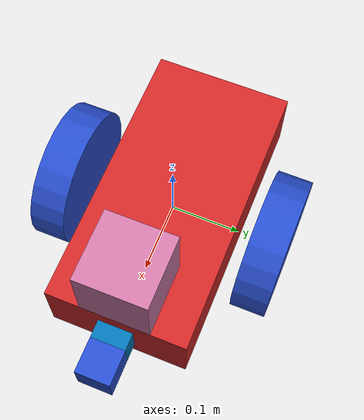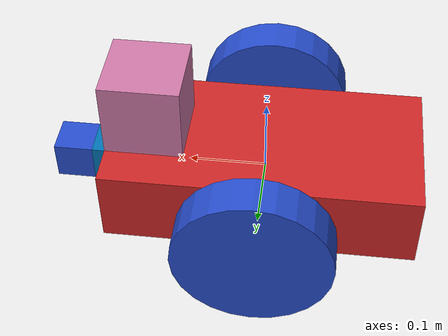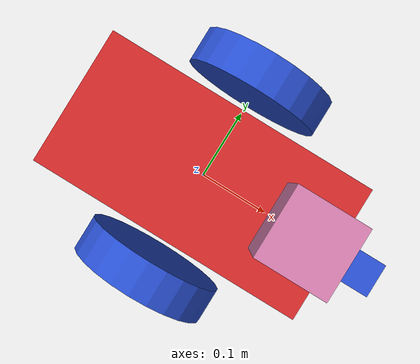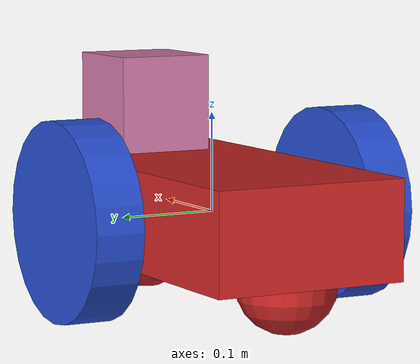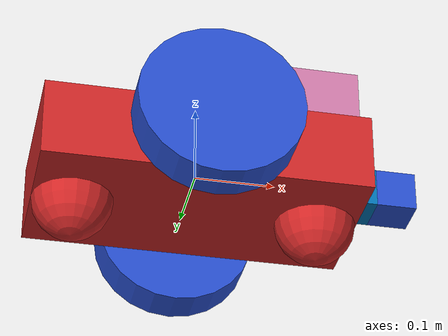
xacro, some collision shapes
<?xml version='1.0'?>

<robot name="my_robot" xmlns:xacro="http://www.ros.org/wiki/xacro">

  <xacro:include filename="$(find my_robot)/urdf/my_robot.gazebo" />

  <link name="robot_footprint"></link>

  <joint name="robot_footprint_joint" type="fixed">
    <origin xyz="0 0 0" rpy="0 0 0" />
    <parent link="robot_footprint"/>
    <child link="chassis" />
  </joint>

  <link name='chassis'>
    <pose>0 0 0.1 0 0 0</pose>

    <inertial>
      <mass value="15.0"/>
      <origin xyz="0.0 0 0" rpy=" 0 0 0"/>
      <inertia
          ixx="0.1" ixy="0" ixz="0"
          iyy="0.1" iyz="0"
          izz="0.1"
      />
    </inertial>

    <collision name='collision'>
      <origin xyz="0 0 0" rpy=" 0 0 0"/>
      <geometry>
        <box size=".4 .2 .1"/>
      </geometry>
    </collision>

    <visual name='chassis_visual'>
      <origin xyz="0 0 0" rpy=" 0 0 0"/>
      <geometry>
        <box size=".4 .2 .1"/>
      </geometry>
    </visual>

    <collision name='back_caster_collision'>
      <origin xyz="-0.15 0 -0.05" rpy=" 0 0 0"/>
      <geometry>
        <sphere radius="0.0499"/>
      </geometry>
    </collision>

    <visual name='back_caster_visual'>
      <origin xyz="-0.15 0 -0.05" rpy=" 0 0 0"/>
      <geometry>
        <sphere radius="0.05"/>
      </geometry>
    </visual>

    <collision name='front_caster_collision'>
      <origin xyz="0.15 0 -0.05" rpy=" 0 0 0"/>
      <geometry>
        <sphere radius="0.0499"/>
      </geometry>
    </collision>

    <visual name='front_caster_visual'>
      <origin xyz="0.15 0 -0.05" rpy=" 0 0 0"/>
      <geometry>
        <sphere radius="0.05"/>
      </geometry>
    </visual>

  </link>

  <link name="left_wheel">

    <inertial>
      <mass value="5.0"/>
      <origin xyz="0 0 0" rpy=" 0 1.5707 1.5707"/>
      <inertia
          ixx="0.1" ixy="0" ixz="0"
          iyy="0.1" iyz="0"
          izz="0.1"
      />
    </inertial>

     <collision name='left_wheel_collision'>
      <origin xyz="0 0 0" rpy=" 0 1.5707 1.5707"/>
      <geometry>
        <cylinder radius="0.1" length="0.05"/>
      </geometry>
    </collision>

    <visual name='left_wheel_collision'>
      <origin xyz="0 0 0" rpy=" 0 1.5707 1.5707"/>
      <geometry>
        <cylinder radius="0.1" length="0.05"/>
      </geometry>
    </visual>

  </link>

  <joint type="continuous" name="left_wheel_hinge">
    <origin xyz="0 0.15 0" rpy="0 0 0"/>
    <child link="left_wheel"/>
    <parent link="chassis"/>
    <axis xyz="0 1 0" rpy="0 0 0"/>
    <limit effort="10000" velocity="1000"/>
    <dynamics damping="1.0" friction="1.0"/>
  </joint>

  <link name="right_wheel">

    <inertial>
      <mass value="5.0"/>
      <origin xyz="0 0 0" rpy=" 0 1.5707 1.5707"/>
      <inertia
          ixx="0.1" ixy="0" ixz="0"
          iyy="0.1" iyz="0"
          izz="0.1"
      />
    </inertial>

     <collision name='right_wheel_collision'>
      <origin xyz="0 0 0" rpy=" 0 1.5707 1.5707"/>
      <geometry>
        <cylinder radius="0.1" length="0.05"/>
      </geometry>
    </collision>

    <visual name='right_wheel_collision'>
      <origin xyz="0 0 0" rpy=" 0 1.5707 1.5707"/>
      <geometry>
        <cylinder radius="0.1" length="0.05"/>
      </geometry>
    </visual>

  </link>

  <joint type="continuous" name="right_wheel_hinge">
    <origin xyz="0 -0.15 0" rpy="0 0 0"/>
    <child link="right_wheel"/>
    <parent link="chassis"/>
    <axis xyz="0 -1 0" rpy="0 0 0"/>
    <limit effort="10000" velocity="1000"/>
    <dynamics damping="1.0" friction="1.0"/>
  </joint>

  <link name="camera">
    <inertial>
      <mass value="0.1"/>
      <origin xyz="0 0 0" rpy="0 0 0"/>
      <inertia
        ixx="1e-6" ixy="0" ixz="0"
        iyy="1e-6" iyz="0"
        izz="1e-6"
      />
    </inertial>

    <collision>
      <origin xyz="0 0 0" rpy="0 0 0"/>
      <geometry>
	<box size="0.05 0.05 0.05"/>
      </geometry>
    </collision>

    <visual>
      <origin xyz="0 0 0" rpy="0 0 0"/>
      <geometry>
	<box size="0.05 0.05 0.05"/>
      </geometry>
    </visual>
  </link>

  <joint type="fixed" name="camera_joint">
    <origin xyz="0.2 0 0" rpy="0 0 0"/>
    <child link="camera"/>
    <parent link="chassis"/>
    <axis xyz="0 1 0" rpy="0 0 0"/>
  </joint>

  <joint name="camera_optical_joint" type="fixed">
    <origin xyz="0.05 0 0" rpy="0 0 0"/>
    <parent link="camera"/>
    <child link="camera_link_optical"/>
  </joint>

  <link name="camera_link_optical">
    <inertial>
      <mass value="0.1"/>
      <origin xyz="0 0 0" rpy="0 0 0"/>
      <inertia
        ixx="1e-6" ixy="0" ixz="0"
        iyy="1e-6" iyz="0"
        izz="1e-6"
      />
    </inertial>

    <collision>
      <origin xyz="0 0 0" rpy="0 0 0"/>
      <geometry>
	<box size="0.05 0.05 0.05"/>
      </geometry>
    </collision>

    <visual>
      <origin xyz="0 0 0" rpy="0 0 0"/>
      <geometry>
	<box size="0.05 0.05 0.05"/>
      </geometry>
      <material name="blue"/>
    </visual>
  </link>

  <link name="hokuyo">
    <collision>
        <origin xyz="0 0 0" rpy="0 0 0"/>
        <geometry>
            <box size="0.1 0.1 0.1"/>
        </geometry>
    </collision>
    <visual>
        <origin xyz="0 0 0" rpy="0 0 0"/>
        <geometry>
            <mesh filename="package://my_robot/meshes/hokuyo.dae"/>
        </geometry>
    </visual>
    <inertial>
        <mass value="1e-5" />
        <origin xyz="0 0 0" rpy="0 0 0"/>
        <inertia ixx="1e-6" ixy="0" ixz="0" iyy="1e-6" iyz="0" izz="1e-6" />
    </inertial>
  </link>

  <joint type="fixed" name="hokuyo_link">
    <origin xyz="0.15 0 0.1" rpy="0 0 0"/>
    <child link="hokuyo"/>
    <parent link="chassis"/>
    <axis xyz="0 1 0" rpy="0 0 0"/>
  </joint>

<gazebo reference="left_wheel">
  <material>Gazebo/Blue</material>
</gazebo>
<gazebo reference="right_wheel">
  <material>Gazebo/Blue</material>
</gazebo>
<gazebo reference="chassis">
  <material>Gazebo/Red</material>
</gazebo>
<gazebo reference="camera_link_optical">
  <material>Gazebo/Yellow</material>
</gazebo>
</robot>
